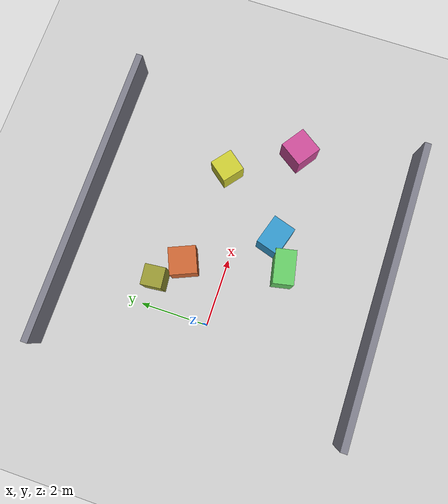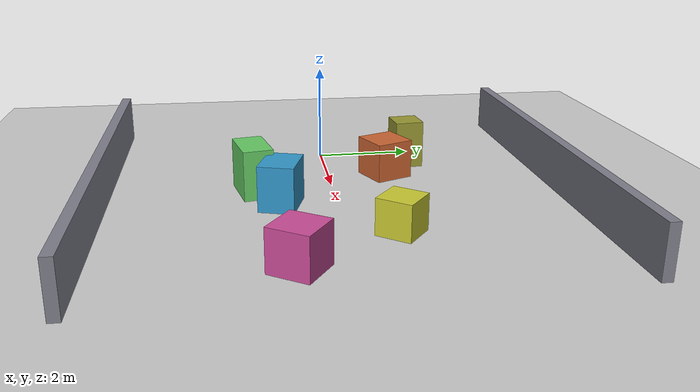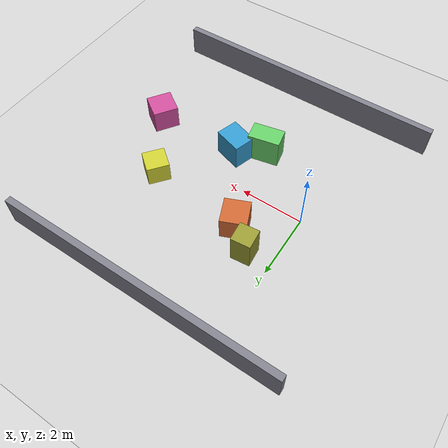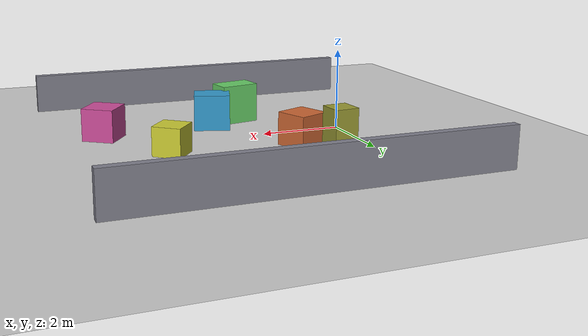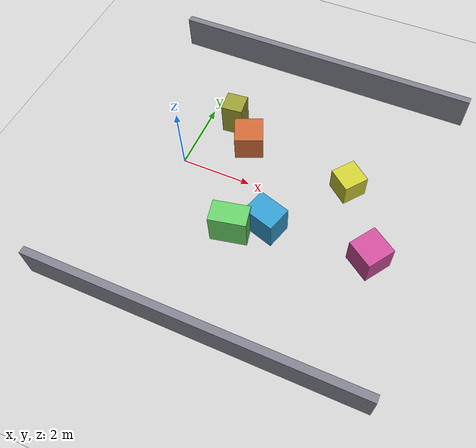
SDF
<?xml version="1.0" ?>
<sdf version="1.6">
  <world name="m1_sparse_plain">

    <!-- 物理参数：1ms 步长 / RTF 目标 0.3~0.8（rate=500 → 上限 0.5） -->
    <physics type="ode">
      <max_step_size>0.001</max_step_size>
      <real_time_update_rate>500</real_time_update_rate>
      <max_contacts>20</max_contacts>
      <ode>
        <solver>
          <type>quick</type>
          <iters>50</iters>
          <sor>1.3</sor>
        </solver>
        <constraints>
          <cfm>0.0</cfm>
          <erp>0.2</erp>
        </constraints>
      </ode>
    </physics>

    <!-- 全局 ROS 桥：/clock + /use_sim_time + spawn_model + /gazebo/model_states（真值交叉核对用） -->
    <plugin name="gazebo_ros_init" filename="libgazebo_ros_init.so"/>
    <plugin name="gazebo_ros_factory" filename="libgazebo_ros_factory.so"/>

    <!-- 光照与地面 -->
    <include>
      <uri>model://sun</uri>
    </include>
    <include>
      <uri>model://ground_plane</uri>
    </include>

    <!-- 场景边界墙（可选防跑飞，距走廊 4m，M1 判据不依赖） -->
    <model name="perimeter_north">
      <static>true</static>
      <pose>2.5 4.5 0.5 0 0 0</pose>
      <link name="link">
        <collision name="col"><geometry><box><size>9 0.2 1.0</size></box></geometry></collision>
        <visual name="vis"><geometry><box><size>9 0.2 1.0</size></box></geometry><material><ambient>0.5 0.5 0.55 1</ambient></material></visual>
      </link>
    </model>
    <model name="perimeter_south">
      <static>true</static>
      <pose>2.5 -4.5 0.5 0 0 0</pose>
      <link name="link">
        <collision name="col"><geometry><box><size>9 0.2 1.0</size></box></geometry></collision>
        <visual name="vis"><geometry><box><size>9 0.2 1.0</size></box></geometry><material><ambient>0.5 0.5 0.55 1</ambient></material></visual>
      </link>
    </model>

    <!-- 稀障盒×6：size 0.6~1.0m，走|x|向走廊(0..5.5, |y|<0.6)外，给 LIO 特征 -->
    <model name="obs_1">
      <static>true</static>
      <pose>1.5 1.2 0.4 0 0 0.4</pose>
      <link name="link">
        <collision name="col"><geometry><box><size>0.8 0.8 0.8</size></box></geometry></collision>
        <visual name="vis"><geometry><box><size>0.8 0.8 0.8</size></box></geometry><material><ambient>0.8 0.4 0.2 1</ambient></material></visual>
      </link>
    </model>
    <model name="obs_2">
      <static>true</static>
      <pose>3.0 -1.1 0.45 0 0 -0.3</pose>
      <link name="link">
        <collision name="col"><geometry><box><size>0.9 0.7 0.9</size></box></geometry></collision>
        <visual name="vis"><geometry><box><size>0.9 0.7 0.9</size></box></geometry><material><ambient>0.2 0.6 0.8 1</ambient></material></visual>
      </link>
    </model>
    <model name="obs_3">
      <static>true</static>
      <pose>4.6 0.9 0.35 0 0 0.9</pose>
      <link name="link">
        <collision name="col"><geometry><box><size>0.7 0.7 0.7</size></box></geometry></collision>
        <visual name="vis"><geometry><box><size>0.7 0.7 0.7</size></box></geometry><material><ambient>0.8 0.8 0.2 1</ambient></material></visual>
      </link>
    </model>
    <model name="obs_4">
      <static>true</static>
      <pose>2.2 -1.6 0.5 0 0 0.2</pose>
      <link name="link">
        <collision name="col"><geometry><box><size>1.0 0.6 1.0</size></box></geometry></collision>
        <visual name="vis"><geometry><box><size>1.0 0.6 1.0</size></box></geometry><material><ambient>0.4 0.8 0.4 1</ambient></material></visual>
      </link>
    </model>
    <model name="obs_5">
      <static>true</static>
      <pose>5.8 -1.0 0.4 0 0 -0.6</pose>
      <link name="link">
        <collision name="col"><geometry><box><size>0.8 0.8 0.8</size></box></geometry></collision>
        <visual name="vis"><geometry><box><size>0.8 0.8 0.8</size></box></geometry><material><ambient>0.8 0.3 0.6 1</ambient></material></visual>
      </link>
    </model>
    <model name="obs_6">
      <static>true</static>
      <pose>0.8 1.8 0.5 0 0 0.1</pose>
      <link name="link">
        <collision name="col"><geometry><box><size>0.6 0.6 1.0</size></box></geometry></collision>
        <visual name="vis"><geometry><box><size>0.6 0.6 1.0</size></box></geometry><material><ambient>0.6 0.6 0.2 1</ambient></material></visual>
      </link>
    </model>

  </world>
</sdf>
